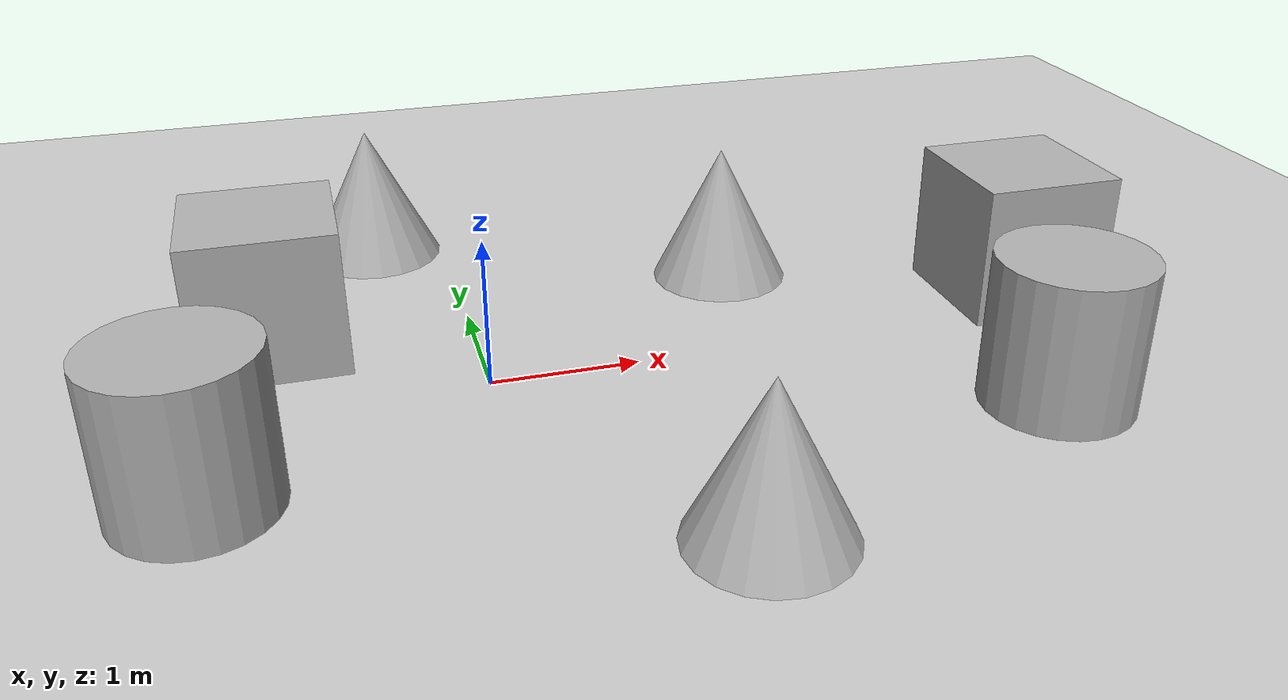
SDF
<sdf version='1.10'>
  <world name='empty'>
    <physics name='1ms' type='ignored'>
      <max_step_size>0.001</max_step_size>
      <real_time_factor>1</real_time_factor>
      <real_time_update_rate>1000</real_time_update_rate>
    </physics>
    <plugin name='gz::sim::systems::Physics' filename='gz-sim-physics-system'/>
    <plugin name='gz::sim::systems::UserCommands' filename='gz-sim-user-commands-system'/>
    <plugin name='gz::sim::systems::SceneBroadcaster' filename='gz-sim-scene-broadcaster-system'/>
    <plugin name='gz::sim::systems::Sensors' filename='gz-sim-sensors-system'>
      <render_engine>ogre2</render_engine>
    </plugin>
    <plugin name='gz::sim::systems::Contact' filename='gz-sim-contact-system'/>
    <gravity>0 0 -9.8000000000000007</gravity>
    <magnetic_field>5.5644999999999998e-06 2.2875799999999999e-05 -4.2388400000000002e-05</magnetic_field>
    <atmosphere type='adiabatic'/>
    <scene>
      <ambient>0.400000006 0.400000006 0.400000006 1</ambient>
      <background>0.699999988 0.699999988 0.699999988 1</background>
      <shadows>true</shadows>
    </scene>
    <model name='ground_plane'>
      <static>true</static>
      <link name='link'>
        <collision name='collision'>
          <geometry>
            <plane>
              <normal>0 0 1</normal>
              <size>100 100</size>
            </plane>
          </geometry>
          <surface>
            <friction>
              <ode/>
            </friction>
            <bounce/>
            <contact/>
          </surface>
        </collision>
        <visual name='visual'>
          <geometry>
            <plane>
              <normal>0 0 1</normal>
              <size>100 100</size>
            </plane>
          </geometry>
          <material>
            <ambient>0.800000012 0.800000012 0.800000012 1</ambient>
            <diffuse>0.800000012 0.800000012 0.800000012 1</diffuse>
            <specular>0.800000012 0.800000012 0.800000012 1</specular>
          </material>
        </visual>
        <pose>0 0 0 0 0 0</pose>
        <inertial>
          <pose>0 0 0 0 0 0</pose>
          <mass>1</mass>
          <inertia>
            <ixx>1</ixx>
            <ixy>0</ixy>
            <ixz>0</ixz>
            <iyy>1</iyy>
            <iyz>0</iyz>
            <izz>1</izz>
          </inertia>
        </inertial>
        <enable_wind>false</enable_wind>
      </link>
      <pose>0 0 0 0 0 0</pose>
      <self_collide>false</self_collide>
    </model>
    <model name='cone'>
      <pose>1.9728466321881934 1.1852696795584752 0.49999999993296756 5.2542474327592625e-17 -7.7132841039333329e-10 -1.7140678508643009e-22</pose>
      <link name='cone_link'>
        <inertial>
          <inertia>
            <ixx>0.074999999999999997</ixx>
            <ixy>0</ixy>
            <ixz>0</ixz>
            <iyy>0.074999999999999997</iyy>
            <iyz>0</iyz>
            <izz>0.074999999999999997</izz>
          </inertia>
          <mass>1</mass>
          <pose>0 0 0 0 0 0</pose>
        </inertial>
        <collision name='cone_collision'>
          <geometry>
            <cone>
              <radius>0.5</radius>
              <length>1</length>
            </cone>
          </geometry>
          <surface>
            <friction>
              <ode/>
            </friction>
            <bounce/>
            <contact/>
          </surface>
        </collision>
        <visual name='cone_visual'>
          <geometry>
            <cone>
              <radius>0.5</radius>
              <length>1</length>
            </cone>
          </geometry>
          <material>
            <ambient>0.300000012 0.300000012 0.300000012 1</ambient>
            <diffuse>0.699999988 0.699999988 0.699999988 1</diffuse>
            <specular>1 1 1 1</specular>
          </material>
        </visual>
        <pose>0 0 0 0 0 0</pose>
        <enable_wind>false</enable_wind>
      </link>
      <static>false</static>
      <self_collide>false</self_collide>
    </model>
    <model name='cone_1'>
      <pose>1.1442640161942719 -2.0806322389130751 0.4999999999393625 4.0324799783734289e-11 1.6174331192144002e-10 1.9726132573314158e-17</pose>
      <link name='cone_link'>
        <inertial>
          <inertia>
            <ixx>0.074999999999999997</ixx>
            <ixy>0</ixy>
            <ixz>0</ixz>
            <iyy>0.074999999999999997</iyy>
            <iyz>0</iyz>
            <izz>0.074999999999999997</izz>
          </inertia>
          <mass>1</mass>
        </inertial>
        <collision name='cone_collision'>
          <geometry>
            <cone>
              <radius>0.5</radius>
              <length>1</length>
            </cone>
          </geometry>
          <surface>
            <friction>
              <ode/>
            </friction>
            <bounce/>
            <contact/>
          </surface>
        </collision>
        <visual name='cone_visual'>
          <geometry>
            <cone>
              <radius>0.5</radius>
              <length>1</length>
            </cone>
          </geometry>
          <material>
            <ambient>0.300000012 0.300000012 0.300000012 1</ambient>
            <diffuse>0.699999988 0.699999988 0.699999988 1</diffuse>
            <specular>1 1 1 1</specular>
          </material>
        </visual>
      </link>
      <static>false</static>
      <self_collide>false</self_collide>
    </model>
    <model name='cone_2'>
      <pose>-0.52084033023889154 2.336739459904567 0.4999999999393625 4.0324799783537272e-11 1.617433119138707e-10 1.9726030485439981e-17</pose>
      <link name='cone_link'>
        <inertial>
          <inertia>
            <ixx>0.074999999999999997</ixx>
            <ixy>0</ixy>
            <ixz>0</ixz>
            <iyy>0.074999999999999997</iyy>
            <iyz>0</iyz>
            <izz>0.074999999999999997</izz>
          </inertia>
          <mass>1</mass>
        </inertial>
        <collision name='cone_collision'>
          <geometry>
            <cone>
              <radius>0.5</radius>
              <length>1</length>
            </cone>
          </geometry>
          <surface>
            <friction>
              <ode/>
            </friction>
            <bounce/>
            <contact/>
          </surface>
        </collision>
        <visual name='cone_visual'>
          <geometry>
            <cone>
              <radius>0.5</radius>
              <length>1</length>
            </cone>
          </geometry>
          <material>
            <ambient>0.300000012 0.300000012 0.300000012 1</ambient>
            <diffuse>0.699999988 0.699999988 0.699999988 1</diffuse>
            <specular>1 1 1 1</specular>
          </material>
        </visual>
      </link>
      <static>false</static>
      <self_collide>false</self_collide>
    </model>
    <model name='cylinder'>
      <pose>3.4141803499361671 -1.2226343441813585 0.49999942638036005 4.4405974130185459e-20 -1.4146121673083804e-19 -3.3170155157674387e-21</pose>
      <link name='cylinder_link'>
        <inertial>
          <inertia>
            <ixx>0.14580000000000001</ixx>
            <ixy>0</ixy>
            <ixz>0</ixz>
            <iyy>0.14580000000000001</iyy>
            <iyz>0</iyz>
            <izz>0.125</izz>
          </inertia>
          <mass>1</mass>
          <pose>0 0 0 0 0 0</pose>
        </inertial>
        <collision name='cylinder_collision'>
          <geometry>
            <cylinder>
              <radius>0.5</radius>
              <length>1</length>
            </cylinder>
          </geometry>
          <surface>
            <friction>
              <ode/>
            </friction>
            <bounce/>
            <contact/>
          </surface>
        </collision>
        <visual name='cylinder_visual'>
          <geometry>
            <cylinder>
              <radius>0.5</radius>
              <length>1</length>
            </cylinder>
          </geometry>
          <material>
            <ambient>0.300000012 0.300000012 0.300000012 1</ambient>
            <diffuse>0.699999988 0.699999988 0.699999988 1</diffuse>
            <specular>1 1 1 1</specular>
          </material>
        </visual>
        <pose>0 0 0 0 0 0</pose>
        <enable_wind>false</enable_wind>
      </link>
      <static>false</static>
      <self_collide>false</self_collide>
    </model>
    <model name='cylinder_1'>
      <pose>-1.7952777762465244 -0.90480576808556101 0.49999899681693183 4.6235460494066261e-20 -1.4044153675332321e-19 -2.7878939519547621e-21</pose>
      <link name='cylinder_link'>
        <inertial>
          <inertia>
            <ixx>0.14580000000000001</ixx>
            <ixy>0</ixy>
            <ixz>0</ixz>
            <iyy>0.14580000000000001</iyy>
            <iyz>0</iyz>
            <izz>0.125</izz>
          </inertia>
          <mass>1</mass>
        </inertial>
        <collision name='cylinder_collision'>
          <geometry>
            <cylinder>
              <radius>0.5</radius>
              <length>1</length>
            </cylinder>
          </geometry>
          <surface>
            <friction>
              <ode/>
            </friction>
            <bounce/>
            <contact/>
          </surface>
        </collision>
        <visual name='cylinder_visual'>
          <geometry>
            <cylinder>
              <radius>0.5</radius>
              <length>1</length>
            </cylinder>
          </geometry>
          <material>
            <ambient>0.300000012 0.300000012 0.300000012 1</ambient>
            <diffuse>0.699999988 0.699999988 0.699999988 1</diffuse>
            <specular>1 1 1 1</specular>
          </material>
        </visual>
      </link>
      <static>false</static>
      <self_collide>false</self_collide>
    </model>
    <model name='box'>
      <pose>-1.3409064486354181 0.87574932324421173 0.49999999990199806 6.2287739151293738e-22 9.3279666454713669e-22 -3.6315533669320137e-22</pose>
      <link name='box_link'>
        <inertial>
          <inertia>
            <ixx>0.16666</ixx>
            <ixy>0</ixy>
            <ixz>0</ixz>
            <iyy>0.16666</iyy>
            <iyz>0</iyz>
            <izz>0.16666</izz>
          </inertia>
          <mass>1</mass>
          <pose>0 0 0 0 0 0</pose>
        </inertial>
        <collision name='box_collision'>
          <geometry>
            <box>
              <size>1 1 1</size>
            </box>
          </geometry>
          <surface>
            <friction>
              <ode/>
            </friction>
            <bounce/>
            <contact/>
          </surface>
        </collision>
        <visual name='box_visual'>
          <geometry>
            <box>
              <size>1 1 1</size>
            </box>
          </geometry>
          <material>
            <ambient>0.300000012 0.300000012 0.300000012 1</ambient>
            <diffuse>0.699999988 0.699999988 0.699999988 1</diffuse>
            <specular>1 1 1 1</specular>
          </material>
        </visual>
        <pose>0 0 0 0 0 0</pose>
        <enable_wind>false</enable_wind>
      </link>
      <static>false</static>
      <self_collide>false</self_collide>
    </model>
    <model name='box_1'>
      <pose>3.9450322126324497 0.32930227249698951 0.49999999990199806 -8.5189348373204123e-22 1.817857541294396e-21 9.246246142765725e-23</pose>
      <link name='box_link'>
        <inertial>
          <inertia>
            <ixx>0.16666</ixx>
            <ixy>0</ixy>
            <ixz>0</ixz>
            <iyy>0.16666</iyy>
            <iyz>0</iyz>
            <izz>0.16666</izz>
          </inertia>
          <mass>1</mass>
        </inertial>
        <collision name='box_collision'>
          <geometry>
            <box>
              <size>1 1 1</size>
            </box>
          </geometry>
          <surface>
            <friction>
              <ode/>
            </friction>
            <bounce/>
            <contact/>
          </surface>
        </collision>
        <visual name='box_visual'>
          <geometry>
            <box>
              <size>1 1 1</size>
            </box>
          </geometry>
          <material>
            <ambient>0.300000012 0.300000012 0.300000012 1</ambient>
            <diffuse>0.699999988 0.699999988 0.699999988 1</diffuse>
            <specular>1 1 1 1</specular>
          </material>
        </visual>
      </link>
      <static>false</static>
      <self_collide>false</self_collide>
    </model>
    <light name='sun' type='directional'>
      <pose>0 0 10 0 0 0</pose>
      <cast_shadows>true</cast_shadows>
      <intensity>1</intensity>
      <direction>-0.5 0.10000000000000001 -0.90000000000000002</direction>
      <diffuse>0.800000012 0.800000012 0.800000012 1</diffuse>
      <specular>0.200000003 0.200000003 0.200000003 1</specular>
      <attenuation>
        <range>1000</range>
        <linear>0.01</linear>
        <constant>0.90000000000000002</constant>
        <quadratic>0.001</quadratic>
      </attenuation>
      <spot>
        <inner_angle>0</inner_angle>
        <outer_angle>0</outer_angle>
        <falloff>0</falloff>
      </spot>
    </light>
  </world>
</sdf>
